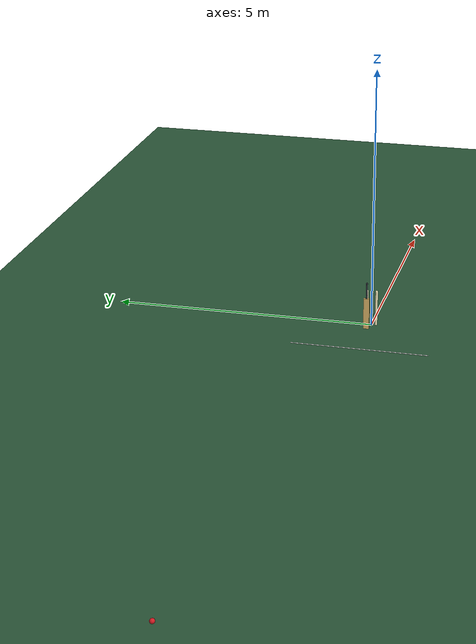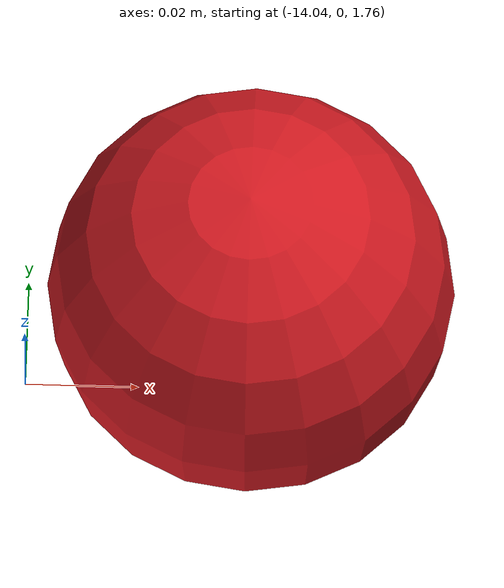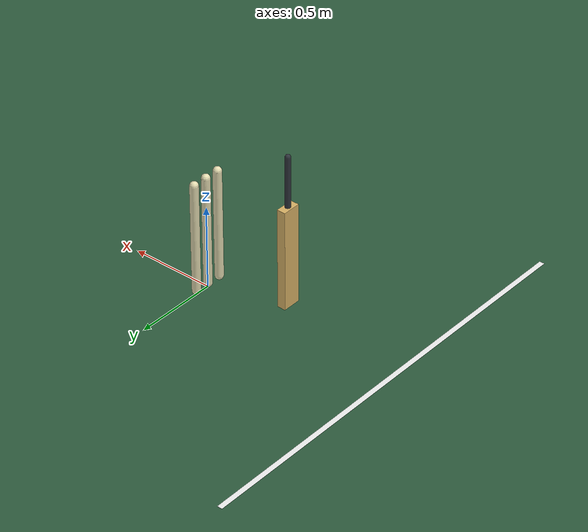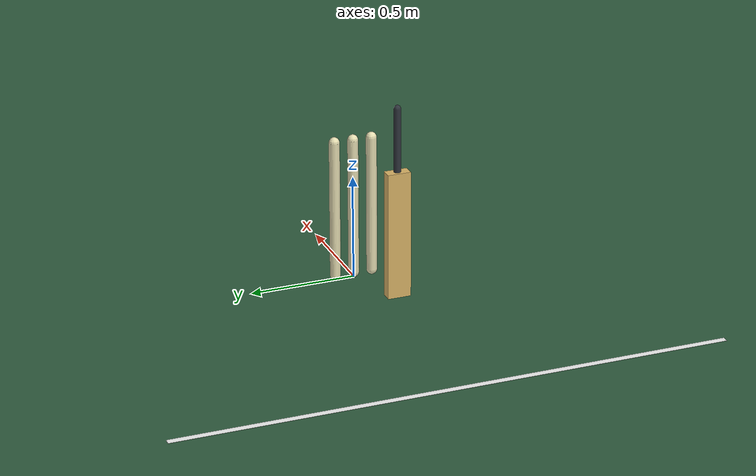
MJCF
<mujoco model="cricket contact sweep">
  <compiler angle="radian"/>
  <option timestep=".00025" integrator="implicitfast" cone="elliptic" iterations="50"/>
  <default>
    <geom contype="2" conaffinity="1" friction=".35 .005 .0001" solref=".004 .5"/>
    <site rgba="0 0 0 0"/>
  </default>
  <visual>
    <global offwidth="1280" offheight="720"/>
    <headlight ambient=".4 .4 .4" diffuse=".6 .6 .6"/>
  </visual>
  <worldbody>
    <light pos="-4 -3 8" dir=".3 .2 -1" directional="true"/>
    <geom name="pitch" type="plane" size="20 8 .1" rgba=".18 .36 .24 1"/>
    <geom type="box" pos="-1.22 0 .001" size=".015 1.3 .001" rgba=".95 .95 .95 1"
          contype="0" conaffinity="0"/>
    <site name="pitch_touch" type="box" pos="-7 0 0" size="20 8 .01"/>
    <body name="bat" pos="-.55 0 1.05" gravcomp="1">
      <joint name="swing" type="hinge" axis="0 1 0" range="-1.4 1.4" damping=".15"
             solreflimit=".004 1"/>
      <geom name="handle" type="capsule" fromto="0 0 0 0 0 -.30" size=".016" mass=".15"
            contype="0" conaffinity="0" rgba=".18 .20 .23 1"/>
      <geom name="blade" type="box" pos="0 0 -.60" size=".025 .054 .30" mass="1.05"
            rgba=".85 .7 .4 1"/>
      <site name="bat_touch" type="box" pos="0 0 -.60" size=".026 .055 .301"/>
    </body>
    <body name="stumps">
      <geom name="stump_left" type="capsule" fromto="0 -.09 .025 0 -.09 .686" size=".025"
            rgba=".9 .87 .7 1"/>
      <geom name="stump_middle" type="capsule" fromto="0 0 .025 0 0 .686" size=".025"
            rgba=".9 .87 .7 1"/>
      <geom name="stump_right" type="capsule" fromto="0 .09 .025 0 .09 .686" size=".025"
            rgba=".9 .87 .7 1"/>
      <site name="stumps_touch" type="box" pos="0 0 .356" size=".03 .12 .357"/>
    </body>
    <body name="ball" pos="-14 0 1.8">
      <freejoint name="flight"/>
      <geom name="ball" type="sphere" size=".036" mass=".156" contype="1" conaffinity="2"
            rgba=".82 .10 .13 1"/>
    </body>
  </worldbody>
  <actuator>
    <position joint="swing" kp="120" kv="8" ctrlrange="-1.3 1.3" forcerange="-60 60"/>
  </actuator>
  <sensor>
    <touch name="pitch" site="pitch_touch"/>
    <touch name="bat" site="bat_touch"/>
    <touch name="stumps" site="stumps_touch"/>
  </sensor>
</mujoco>
